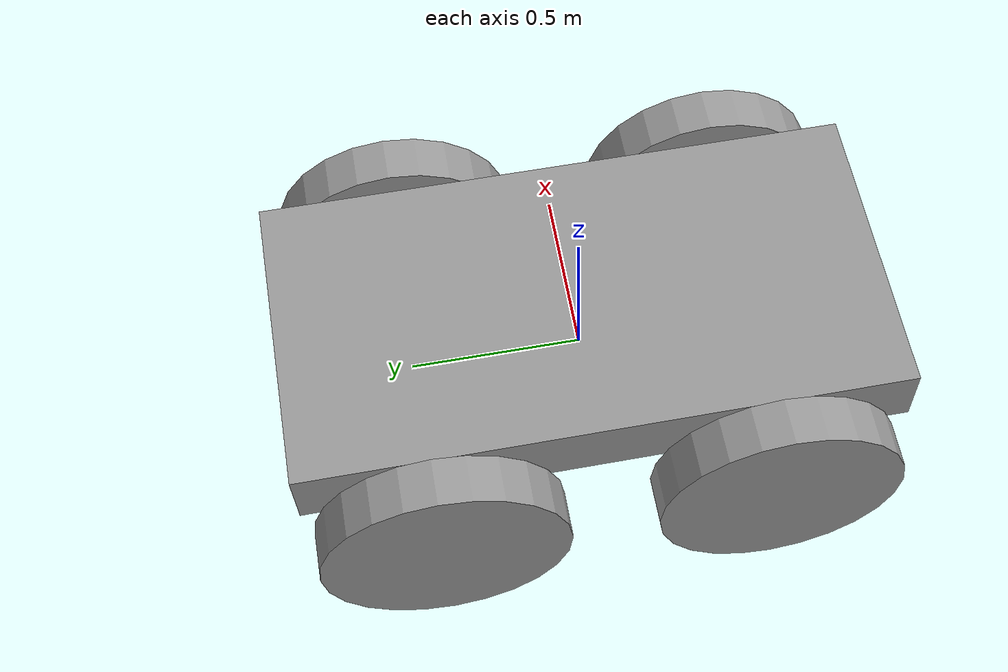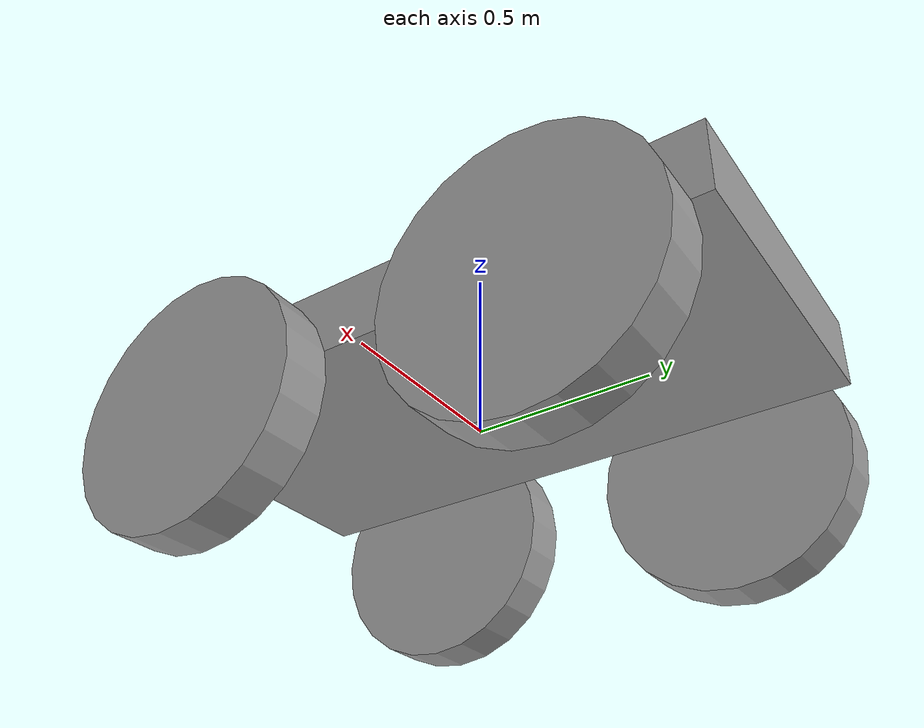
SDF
<?xml version='1.0'?>
<sdf version='1.7'>
  <model name='LittleCar'>
    <link name='link_0'>
      <inertial>
        <mass>0.308263</mass>
        <inertia>
          <ixx>0.078646</ixx>
          <ixy>0</ixy>
          <ixz>0</ixz>
          <iyy>0.0214698</iyy>
          <iyz>0</iyz>
          <izz>0.0980879</izz>
        </inertia>
        <pose>0 0 0 0 -0 0</pose>
      </inertial>
      <pose>-0.006909 -0.001014 0.179745 0 -0 0</pose>
      <visual name='visual'>
        <pose>0 0 0 0 -0 0</pose>
        <geometry>
          <box>
            <size>0.892357 1.7384 0.198675</size>
          </box>
        </geometry>
        <material>
          <lighting>1</lighting>
          <script>
            <uri>file://media/materials/scripts/gazebo.material</uri>
            <name>Gazebo/Grey</name>
          </script>
          <shader type='pixel'/>
          <emissive>0 0 0 1</emissive>
        </material>
        <transparency>0</transparency>
        <cast_shadows>1</cast_shadows>
      </visual>
      <collision name='collision'>
        <laser_retro>0</laser_retro>
        <max_contacts>10</max_contacts>
        <pose>0 0 0 0 -0 0</pose>
        <geometry>
          <box>
            <size>0.892357 1.7384 0.198675</size>
          </box>
        </geometry>
        <surface>
          <friction>
            <ode>
              <mu>1</mu>
              <mu2>1</mu2>
              <fdir1>0 0 0</fdir1>
              <slip1>0</slip1>
              <slip2>0</slip2>
            </ode>
            <torsional>
              <coefficient>1</coefficient>
              <patch_radius>0</patch_radius>
              <surface_radius>0</surface_radius>
              <use_patch_radius>1</use_patch_radius>
              <ode>
                <slip>0</slip>
              </ode>
            </torsional>
          </friction>
          <bounce>
            <restitution_coefficient>0</restitution_coefficient>
            <threshold>1e+06</threshold>
          </bounce>
          <contact>
            <collide_without_contact>0</collide_without_contact>
            <collide_without_contact_bitmask>1</collide_without_contact_bitmask>
            <collide_bitmask>1</collide_bitmask>
            <ode>
              <soft_cfm>0</soft_cfm>
              <soft_erp>0.2</soft_erp>
              <kp>1e+13</kp>
              <kd>1</kd>
              <max_vel>0.01</max_vel>
              <min_depth>0</min_depth>
            </ode>
            <bullet>
              <split_impulse>1</split_impulse>
              <split_impulse_penetration_threshold>-0.01</split_impulse_penetration_threshold>
              <soft_cfm>0</soft_cfm>
              <soft_erp>0.2</soft_erp>
              <kp>1e+13</kp>
              <kd>1</kd>
            </bullet>
          </contact>
        </surface>
      </collision>
    </link>
    <link name='link_1'>
      <inertial>
        <mass>0.0696809</mass>
        <inertia>
          <ixx>0.00233516</ixx>
          <ixy>0</ixy>
          <ixz>0</ixz>
          <iyy>0.00233516</iyy>
          <iyz>0</iyz>
          <izz>0.00445478</izz>
        </inertia>
        <pose>0 0 0 0 -0 0</pose>
      </inertial>
      <pose>-0.533773 0.487667 -0.044937 3.14159 1.57079 3.14159</pose>
      <gravity>1</gravity>
      <self_collide>0</self_collide>
      <kinematic>0</kinematic>
      <enable_wind>0</enable_wind>
      <visual name='visual'>
        <pose>0 0 0 0 -0 0</pose>
        <geometry>
          <cylinder>
            <radius>0.357578</radius>
            <length>0.136234</length>
          </cylinder>
        </geometry>
        <material>
          <lighting>1</lighting>
          <script>
            <uri>file://media/materials/scripts/gazebo.material</uri>
            <name>Gazebo/Grey</name>
          </script>
          <shader type='pixel'>
            <normal_map>__default__</normal_map>
          </shader>
          <ambient>0.3 0.3 0.3 1</ambient>
          <diffuse>0.7 0.7 0.7 1</diffuse>
          <specular>0.01 0.01 0.01 1</specular>
          <emissive>0 0 0 1</emissive>
        </material>
        <transparency>0</transparency>
        <cast_shadows>1</cast_shadows>
      </visual>
      <collision name='collision'>
        <laser_retro>0</laser_retro>
        <max_contacts>10</max_contacts>
        <pose>0 0 0 0 -0 0</pose>
        <geometry>
          <cylinder>
            <radius>0.357578</radius>
            <length>0.136234</length>
          </cylinder>
        </geometry>
        <surface>
          <friction>
            <ode>
              <mu>1</mu>
              <mu2>1</mu2>
              <fdir1>0 0 0</fdir1>
              <slip1>0</slip1>
              <slip2>0</slip2>
            </ode>
            <torsional>
              <coefficient>1</coefficient>
              <patch_radius>0</patch_radius>
              <surface_radius>0</surface_radius>
              <use_patch_radius>1</use_patch_radius>
              <ode>
                <slip>0</slip>
              </ode>
            </torsional>
          </friction>
          <bounce>
            <restitution_coefficient>0</restitution_coefficient>
            <threshold>1e+06</threshold>
          </bounce>
          <contact>
            <collide_without_contact>0</collide_without_contact>
            <collide_without_contact_bitmask>1</collide_without_contact_bitmask>
            <collide_bitmask>1</collide_bitmask>
            <ode>
              <soft_cfm>0</soft_cfm>
              <soft_erp>0.2</soft_erp>
              <kp>1e+13</kp>
              <kd>1</kd>
              <max_vel>0.01</max_vel>
              <min_depth>0</min_depth>
            </ode>
            <bullet>
              <split_impulse>1</split_impulse>
              <split_impulse_penetration_threshold>-0.01</split_impulse_penetration_threshold>
              <soft_cfm>0</soft_cfm>
              <soft_erp>0.2</soft_erp>
              <kp>1e+13</kp>
              <kd>1</kd>
            </bullet>
          </contact>
        </surface>
      </collision>
    </link>
    <link name='link_1_clone'>
      <inertial>
        <mass>0.0696809</mass>
        <inertia>
          <ixx>0.00233516</ixx>
          <ixy>0</ixy>
          <ixz>0</ixz>
          <iyy>0.00233516</iyy>
          <iyz>0</iyz>
          <izz>0.00445478</izz>
        </inertia>
        <pose>0 0 0 0 -0 0</pose>
      </inertial>
      <pose>-0.533058 -0.477451 -0.044936 3.14159 1.57079 3.14159</pose>
      <gravity>1</gravity>
      <self_collide>0</self_collide>
      <kinematic>0</kinematic>
      <enable_wind>0</enable_wind>
      <visual name='visual'>
        <pose>0 0 0 0 -0 0</pose>
        <geometry>
          <cylinder>
            <radius>0.357578</radius>
            <length>0.136234</length>
          </cylinder>
        </geometry>
        <material>
          <lighting>1</lighting>
          <script>
            <uri>file://media/materials/scripts/gazebo.material</uri>
            <name>Gazebo/Grey</name>
          </script>
          <shader type='pixel'>
            <normal_map>__default__</normal_map>
          </shader>
          <ambient>0.3 0.3 0.3 1</ambient>
          <diffuse>0.7 0.7 0.7 1</diffuse>
          <specular>0.01 0.01 0.01 1</specular>
          <emissive>0 0 0 1</emissive>
        </material>
        <transparency>0</transparency>
        <cast_shadows>1</cast_shadows>
      </visual>
      <collision name='collision'>
        <laser_retro>0</laser_retro>
        <max_contacts>10</max_contacts>
        <pose>0 0 0 0 -0 0</pose>
        <geometry>
          <cylinder>
            <radius>0.357578</radius>
            <length>0.136234</length>
          </cylinder>
        </geometry>
        <surface>
          <friction>
            <ode>
              <mu>1</mu>
              <mu2>1</mu2>
              <fdir1>0 0 0</fdir1>
              <slip1>0</slip1>
              <slip2>0</slip2>
            </ode>
            <torsional>
              <coefficient>1</coefficient>
              <patch_radius>0</patch_radius>
              <surface_radius>0</surface_radius>
              <use_patch_radius>1</use_patch_radius>
              <ode>
                <slip>0</slip>
              </ode>
            </torsional>
          </friction>
          <bounce>
            <restitution_coefficient>0</restitution_coefficient>
            <threshold>1e+06</threshold>
          </bounce>
          <contact>
            <collide_without_contact>0</collide_without_contact>
            <collide_without_contact_bitmask>1</collide_without_contact_bitmask>
            <collide_bitmask>1</collide_bitmask>
            <ode>
              <soft_cfm>0</soft_cfm>
              <soft_erp>0.2</soft_erp>
              <kp>1e+13</kp>
              <kd>1</kd>
              <max_vel>0.01</max_vel>
              <min_depth>0</min_depth>
            </ode>
            <bullet>
              <split_impulse>1</split_impulse>
              <split_impulse_penetration_threshold>-0.01</split_impulse_penetration_threshold>
              <soft_cfm>0</soft_cfm>
              <soft_erp>0.2</soft_erp>
              <kp>1e+13</kp>
              <kd>1</kd>
            </bullet>
          </contact>
        </surface>
      </collision>
    </link>
    <link name='link_1_clone_0'>
      <inertial>
        <mass>0.0696809</mass>
        <inertia>
          <ixx>0.00233516</ixx>
          <ixy>0</ixy>
          <ixz>0</ixz>
          <iyy>0.00233516</iyy>
          <iyz>0</iyz>
          <izz>0.00445478</izz>
        </inertia>
        <pose>0 0 0 0 -0 0</pose>
      </inertial>
      <pose>0.534168 0.4807 -0.044937 3.14159 1.57079 3.14159</pose>
      <gravity>1</gravity>
      <self_collide>0</self_collide>
      <kinematic>0</kinematic>
      <enable_wind>0</enable_wind>
      <visual name='visual'>
        <pose>0 0 0 0 -0 0</pose>
        <geometry>
          <cylinder>
            <radius>0.357578</radius>
            <length>0.136234</length>
          </cylinder>
        </geometry>
        <material>
          <lighting>1</lighting>
          <script>
            <uri>file://media/materials/scripts/gazebo.material</uri>
            <name>Gazebo/Grey</name>
          </script>
          <shader type='pixel'>
            <normal_map>__default__</normal_map>
          </shader>
          <ambient>0.3 0.3 0.3 1</ambient>
          <diffuse>0.7 0.7 0.7 1</diffuse>
          <specular>0.01 0.01 0.01 1</specular>
          <emissive>0 0 0 1</emissive>
        </material>
        <transparency>0</transparency>
        <cast_shadows>1</cast_shadows>
      </visual>
      <collision name='collision'>
        <laser_retro>0</laser_retro>
        <max_contacts>10</max_contacts>
        <pose>0 0 0 0 -0 0</pose>
        <geometry>
          <cylinder>
            <radius>0.357578</radius>
            <length>0.136234</length>
          </cylinder>
        </geometry>
        <surface>
          <friction>
            <ode>
              <mu>1</mu>
              <mu2>1</mu2>
              <fdir1>0 0 0</fdir1>
              <slip1>0</slip1>
              <slip2>0</slip2>
            </ode>
            <torsional>
              <coefficient>1</coefficient>
              <patch_radius>0</patch_radius>
              <surface_radius>0</surface_radius>
              <use_patch_radius>1</use_patch_radius>
              <ode>
                <slip>0</slip>
              </ode>
            </torsional>
          </friction>
          <bounce>
            <restitution_coefficient>0</restitution_coefficient>
            <threshold>1e+06</threshold>
          </bounce>
          <contact>
            <collide_without_contact>0</collide_without_contact>
            <collide_without_contact_bitmask>1</collide_without_contact_bitmask>
            <collide_bitmask>1</collide_bitmask>
            <ode>
              <soft_cfm>0</soft_cfm>
              <soft_erp>0.2</soft_erp>
              <kp>1e+13</kp>
              <kd>1</kd>
              <max_vel>0.01</max_vel>
              <min_depth>0</min_depth>
            </ode>
            <bullet>
              <split_impulse>1</split_impulse>
              <split_impulse_penetration_threshold>-0.01</split_impulse_penetration_threshold>
              <soft_cfm>0</soft_cfm>
              <soft_erp>0.2</soft_erp>
              <kp>1e+13</kp>
              <kd>1</kd>
            </bullet>
          </contact>
        </surface>
      </collision>
    </link>
    <link name='link_1_clone_clone'>
      <inertial>
        <mass>0.0696809</mass>
        <inertia>
          <ixx>0.00233516</ixx>
          <ixy>0</ixy>
          <ixz>0</ixz>
          <iyy>0.00233516</iyy>
          <iyz>0</iyz>
          <izz>0.00445478</izz>
        </inertia>
        <pose>0 0 0 0 -0 0</pose>
      </inertial>
      <pose>0.539576 -0.489904 -0.044936 3.14159 1.57079 3.14159</pose>
      <gravity>1</gravity>
      <self_collide>0</self_collide>
      <kinematic>0</kinematic>
      <enable_wind>0</enable_wind>
      <visual name='visual'>
        <pose>0 0 0 0 -0 0</pose>
        <geometry>
          <cylinder>
            <radius>0.357578</radius>
            <length>0.136234</length>
          </cylinder>
        </geometry>
        <material>
          <lighting>1</lighting>
          <script>
            <uri>file://media/materials/scripts/gazebo.material</uri>
            <name>Gazebo/Grey</name>
          </script>
          <shader type='pixel'>
            <normal_map>__default__</normal_map>
          </shader>
          <ambient>0.3 0.3 0.3 1</ambient>
          <diffuse>0.7 0.7 0.7 1</diffuse>
          <specular>0.01 0.01 0.01 1</specular>
          <emissive>0 0 0 1</emissive>
        </material>
        <transparency>0</transparency>
        <cast_shadows>1</cast_shadows>
      </visual>
      <collision name='collision'>
        <laser_retro>0</laser_retro>
        <max_contacts>10</max_contacts>
        <pose>0 0 0 0 -0 0</pose>
        <geometry>
          <cylinder>
            <radius>0.357578</radius>
            <length>0.136234</length>
          </cylinder>
        </geometry>
        <surface>
          <friction>
            <ode>
              <mu>1</mu>
              <mu2>1</mu2>
              <fdir1>0 0 0</fdir1>
              <slip1>0</slip1>
              <slip2>0</slip2>
            </ode>
            <torsional>
              <coefficient>1</coefficient>
              <patch_radius>0</patch_radius>
              <surface_radius>0</surface_radius>
              <use_patch_radius>1</use_patch_radius>
              <ode>
                <slip>0</slip>
              </ode>
            </torsional>
          </friction>
          <bounce>
            <restitution_coefficient>0</restitution_coefficient>
            <threshold>1e+06</threshold>
          </bounce>
          <contact>
            <collide_without_contact>0</collide_without_contact>
            <collide_without_contact_bitmask>1</collide_without_contact_bitmask>
            <collide_bitmask>1</collide_bitmask>
            <ode>
              <soft_cfm>0</soft_cfm>
              <soft_erp>0.2</soft_erp>
              <kp>1e+13</kp>
              <kd>1</kd>
              <max_vel>0.01</max_vel>
              <min_depth>0</min_depth>
            </ode>
            <bullet>
              <split_impulse>1</split_impulse>
              <split_impulse_penetration_threshold>-0.01</split_impulse_penetration_threshold>
              <soft_cfm>0</soft_cfm>
              <soft_erp>0.2</soft_erp>
              <kp>1e+13</kp>
              <kd>1</kd>
            </bullet>
          </contact>
        </surface>
      </collision>
    </link>
    <static>0</static>
    <allow_auto_disable>1</allow_auto_disable>
  </model>
</sdf>
